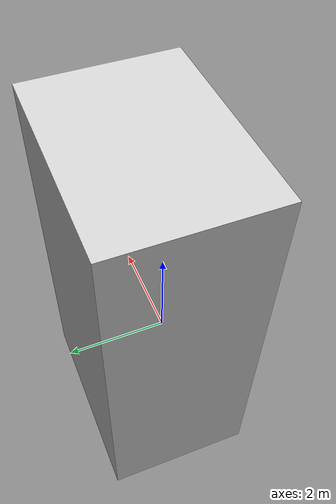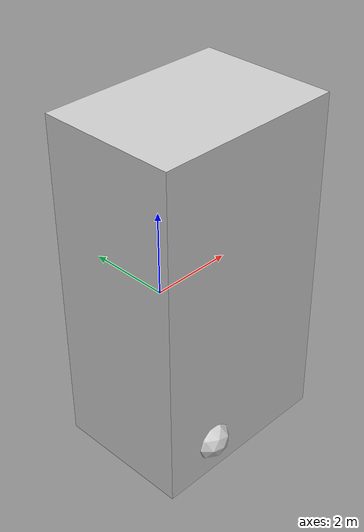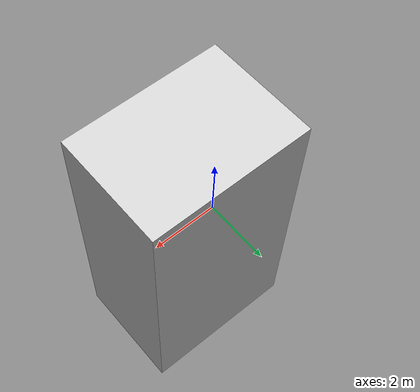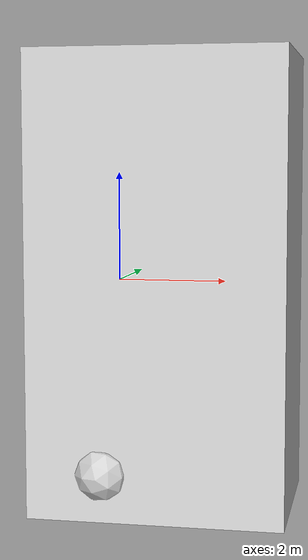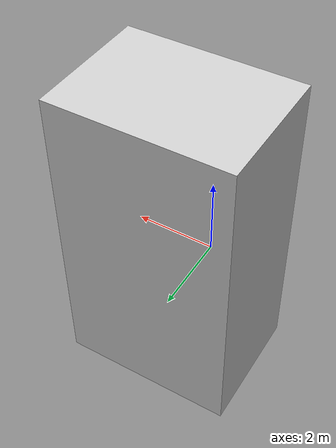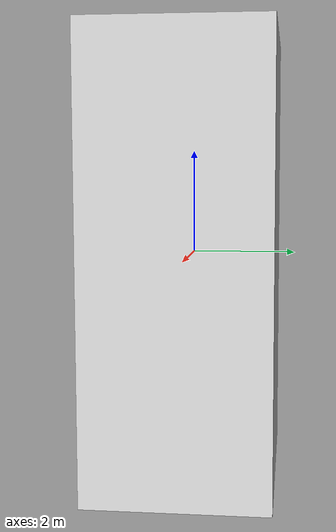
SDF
<?xml version='1.0' ?>
<sdf version="1.6">
    <model name="fluid_dynamics">
        <static>true</static>
        <link name="link">
            <pose>0 0 0 1.57 3.14159 0</pose>
            <collision name="collision">
                <geometry>
                    <mesh>
                        <uri>meshes/fluid_dynamics.dae</uri>
                    </mesh>
                </geometry>
            </collision>
            <visual name="visual">
                <geometry>
                    <mesh>
                        <uri>meshes/fluid_dynamics.dae</uri>
                    </mesh>
                </geometry>
            </visual>
        </link>
    </model>
</sdf>
